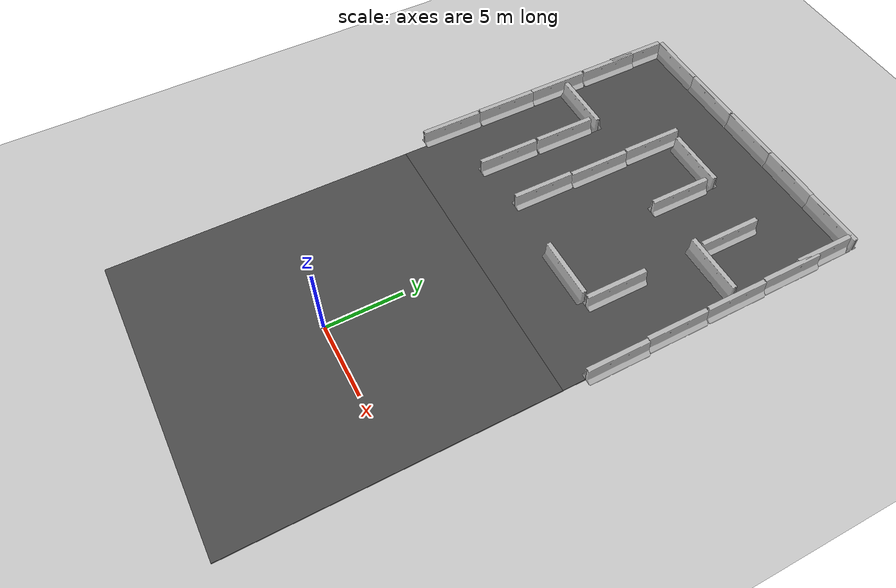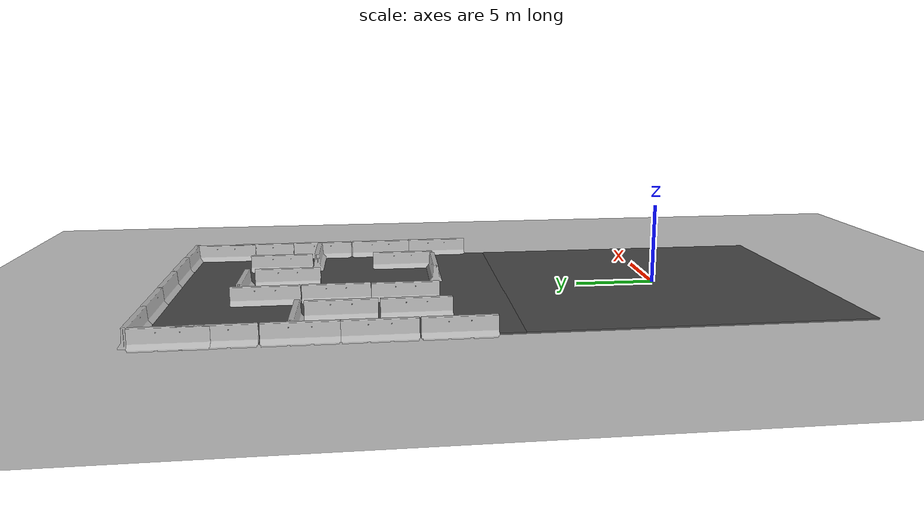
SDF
<sdf version="1.6">
 <world name="default">
  <model name="ground_plane">
   <static>1</static>
   <link name="link">
    <collision name="collision">
     <geometry><plane><normal>0 0 1</normal><size>100 100</size></plane></geometry>
     <surface><friction><ode><mu>100</mu><mu2>50</mu2></ode></friction></surface>
    </collision>
    <visual name="visual">
     <cast_shadows>0</cast_shadows>
     <geometry><plane><normal>0 0 1</normal><size>100 100</size></plane></geometry>
     <material>
      <script><uri>file://media/materials/scripts/gazebo.material</uri><name>Gazebo/Grey</name></script>
     </material>
    </visual>
   </link>
  </model>
  <model name="asphalt_plane">
   <static>1</static>
   <link name="link">
    <collision name="collision"><geometry><box><size>20 20 0.1</size></box></geometry></collision>
    <visual name="visual">
     <cast_shadows>0</cast_shadows>
     <geometry><box><size>20 20 0.1</size></box></geometry>
     <material>
      <script>
       <uri>model://asphalt_plane/materials/scripts</uri>
       <uri>model://asphalt_plane/materials/textures</uri>
       <name>vrc/asphalt</name>
      </script>
     </material>
    </visual>
   </link>
   <pose>0.010541 -0.044599 0 0 -0 0</pose>
  </model>
  <model name="asphalt_plane_0">
   <static>1</static>
   <link name="link">
    <collision name="collision"><geometry><box><size>20 20 0.1</size></box></geometry></collision>
    <visual name="visual">
     <cast_shadows>0</cast_shadows>
     <geometry><box><size>20 20 0.1</size></box></geometry>
     <material>
      <script>
       <uri>model://asphalt_plane/materials/scripts</uri>
       <uri>model://asphalt_plane/materials/textures</uri>
       <name>vrc/asphalt</name>
      </script>
     </material>
    </visual>
   </link>
   <pose>-0.000537 19.9198 0 0 -0 0</pose>
  </model>
  <model name="jersey_barrier_0_clone_3">
   <static>1</static>
   <link name="link">
    <visual name="visual">
     <geometry><mesh><uri>model://jersey_barrier/meshes/jersey_barrier.dae</uri></mesh></geometry>
    </visual>
    <collision name="upright">
     <pose>0 0 0.5715 0 -0 0</pose>
     <geometry><box><size>4.06542 0.3063 1.143</size></box></geometry>
    </collision>
    <collision name="base">
     <pose>0 0 0.032258 0 -0 0</pose>
     <geometry><box><size>4.06542 0.8107 0.064516</size></box></geometry>
    </collision>
    <collision name="base2">
     <pose>0 0 0.1 0 -0 0</pose>
     <geometry><box><size>4.06542 0.65 0.1</size></box></geometry>
    </collision>
    <collision name="base3">
     <pose>0 0 0.2 0 -0 0</pose>
     <geometry><box><size>4.06542 0.5 0.1</size></box></geometry>
    </collision>
    <collision name="left-angle">
     <pose>0 -0.224 0.2401 0.9 -0 0</pose>
     <geometry><box><size>4.06542 0.5 0.064516</size></box></geometry>
    </collision>
    <collision name="right-angle">
     <pose>0 0.224 0.2401 -0.9 0 0</pose>
     <geometry><box><size>4.06542 0.5 0.064516</size></box></geometry>
    </collision>
   </link>
   <pose>-10.2097 13.4787 0 0 -0 1.57</pose>
  </model>
  <model name="jersey_barrier_0_clone_4">
   <static>1</static>
   <link name="link">
    <visual name="visual">
     <geometry><mesh><uri>model://jersey_barrier/meshes/jersey_barrier.dae</uri></mesh></geometry>
    </visual>
    <collision name="upright">
     <pose>0 0 0.5715 0 -0 0</pose>
     <geometry><box><size>4.06542 0.3063 1.143</size></box></geometry>
    </collision>
    <collision name="base">
     <pose>0 0 0.032258 0 -0 0</pose>
     <geometry><box><size>4.06542 0.8107 0.064516</size></box></geometry>
    </collision>
    <collision name="base2">
     <pose>0 0 0.1 0 -0 0</pose>
     <geometry><box><size>4.06542 0.65 0.1</size></box></geometry>
    </collision>
    <collision name="base3">
     <pose>0 0 0.2 0 -0 0</pose>
     <geometry><box><size>4.06542 0.5 0.1</size></box></geometry>
    </collision>
    <collision name="left-angle">
     <pose>0 -0.224 0.2401 0.9 -0 0</pose>
     <geometry><box><size>4.06542 0.5 0.064516</size></box></geometry>
    </collision>
    <collision name="right-angle">
     <pose>0 0.224 0.2401 -0.9 0 0</pose>
     <geometry><box><size>4.06542 0.5 0.064516</size></box></geometry>
    </collision>
   </link>
   <pose>-10.2285 17.6199 0 0 -0 1.57</pose>
  </model>
  <model name="jersey_barrier_0_clone_5">
   <static>1</static>
   <link name="link">
    <visual name="visual">
     <geometry><mesh><uri>model://jersey_barrier/meshes/jersey_barrier.dae</uri></mesh></geometry>
    </visual>
    <collision name="upright">
     <pose>0 0 0.5715 0 -0 0</pose>
     <geometry><box><size>4.06542 0.3063 1.143</size></box></geometry>
    </collision>
    <collision name="base">
     <pose>0 0 0.032258 0 -0 0</pose>
     <geometry><box><size>4.06542 0.8107 0.064516</size></box></geometry>
    </collision>
    <collision name="base2">
     <pose>0 0 0.1 0 -0 0</pose>
     <geometry><box><size>4.06542 0.65 0.1</size></box></geometry>
    </collision>
    <collision name="base3">
     <pose>0 0 0.2 0 -0 0</pose>
     <geometry><box><size>4.06542 0.5 0.1</size></box></geometry>
    </collision>
    <collision name="left-angle">
     <pose>0 -0.224 0.2401 0.9 -0 0</pose>
     <geometry><box><size>4.06542 0.5 0.064516</size></box></geometry>
    </collision>
    <collision name="right-angle">
     <pose>0 0.224 0.2401 -0.9 0 0</pose>
     <geometry><box><size>4.06542 0.5 0.064516</size></box></geometry>
    </collision>
   </link>
   <pose>-10.2364 21.6611 0 0 -0 1.57</pose>
  </model>
  <model name="jersey_barrier_0_clone_6">
   <static>1</static>
   <link name="link">
    <visual name="visual">
     <geometry><mesh><uri>model://jersey_barrier/meshes/jersey_barrier.dae</uri></mesh></geometry>
    </visual>
    <collision name="upright">
     <pose>0 0 0.5715 0 -0 0</pose>
     <geometry><box><size>4.06542 0.3063 1.143</size></box></geometry>
    </collision>
    <collision name="base">
     <pose>0 0 0.032258 0 -0 0</pose>
     <geometry><box><size>4.06542 0.8107 0.064516</size></box></geometry>
    </collision>
    <collision name="base2">
     <pose>0 0 0.1 0 -0 0</pose>
     <geometry><box><size>4.06542 0.65 0.1</size></box></geometry>
    </collision>
    <collision name="base3">
     <pose>0 0 0.2 0 -0 0</pose>
     <geometry><box><size>4.06542 0.5 0.1</size></box></geometry>
    </collision>
    <collision name="left-angle">
     <pose>0 -0.224 0.2401 0.9 -0 0</pose>
     <geometry><box><size>4.06542 0.5 0.064516</size></box></geometry>
    </collision>
    <collision name="right-angle">
     <pose>0 0.224 0.2401 -0.9 0 0</pose>
     <geometry><box><size>4.06542 0.5 0.064516</size></box></geometry>
    </collision>
   </link>
   <pose>-10.2327 25.7998 0 0 -0 1.57</pose>
  </model>
  <model name="jersey_barrier_0_clone_7">
   <static>1</static>
   <link name="link">
    <visual name="visual">
     <geometry><mesh><uri>model://jersey_barrier/meshes/jersey_barrier.dae</uri></mesh></geometry>
    </visual>
    <collision name="upright">
     <pose>0 0 0.5715 0 -0 0</pose>
     <geometry><box><size>4.06542 0.3063 1.143</size></box></geometry>
    </collision>
    <collision name="base">
     <pose>0 0 0.032258 0 -0 0</pose>
     <geometry><box><size>4.06542 0.8107 0.064516</size></box></geometry>
    </collision>
    <collision name="base2">
     <pose>0 0 0.1 0 -0 0</pose>
     <geometry><box><size>4.06542 0.65 0.1</size></box></geometry>
    </collision>
    <collision name="base3">
     <pose>0 0 0.2 0 -0 0</pose>
     <geometry><box><size>4.06542 0.5 0.1</size></box></geometry>
    </collision>
    <collision name="left-angle">
     <pose>0 -0.224 0.2401 0.9 -0 0</pose>
     <geometry><box><size>4.06542 0.5 0.064516</size></box></geometry>
    </collision>
    <collision name="right-angle">
     <pose>0 0.224 0.2401 -0.9 0 0</pose>
     <geometry><box><size>4.06542 0.5 0.064516</size></box></geometry>
    </collision>
   </link>
   <pose>-10.2894 28.1368 0 0 -0 1.57</pose>
  </model>
  <model name="jersey_barrier_0_clone_13">
   <static>1</static>
   <link name="link">
    <visual name="visual">
     <geometry><mesh><uri>model://jersey_barrier/meshes/jersey_barrier.dae</uri></mesh></geometry>
    </visual>
    <collision name="upright">
     <pose>0 0 0.5715 0 -0 0</pose>
     <geometry><box><size>4.06542 0.3063 1.143</size></box></geometry>
    </collision>
    <collision name="base">
     <pose>0 0 0.032258 0 -0 0</pose>
     <geometry><box><size>4.06542 0.8107 0.064516</size></box></geometry>
    </collision>
    <collision name="base2">
     <pose>0 0 0.1 0 -0 0</pose>
     <geometry><box><size>4.06542 0.65 0.1</size></box></geometry>
    </collision>
    <collision name="base3">
     <pose>0 0 0.2 0 -0 0</pose>
     <geometry><box><size>4.06542 0.5 0.1</size></box></geometry>
    </collision>
    <collision name="left-angle">
     <pose>0 -0.224 0.2401 0.9 -0 0</pose>
     <geometry><box><size>4.06542 0.5 0.064516</size></box></geometry>
    </collision>
    <collision name="right-angle">
     <pose>0 0.224 0.2401 -0.9 0 0</pose>
     <geometry><box><size>4.06542 0.5 0.064516</size></box></geometry>
    </collision>
   </link>
   <pose>10.0379 13.3795 0 0 -0 1.57</pose>
  </model>
  <model name="jersey_barrier_0_clone_14">
   <static>1</static>
   <link name="link">
    <visual name="visual">
     <geometry><mesh><uri>model://jersey_barrier/meshes/jersey_barrier.dae</uri></mesh></geometry>
    </visual>
    <collision name="upright">
     <pose>0 0 0.5715 0 -0 0</pose>
     <geometry><box><size>4.06542 0.3063 1.143</size></box></geometry>
    </collision>
    <collision name="base">
     <pose>0 0 0.032258 0 -0 0</pose>
     <geometry><box><size>4.06542 0.8107 0.064516</size></box></geometry>
    </collision>
    <collision name="base2">
     <pose>0 0 0.1 0 -0 0</pose>
     <geometry><box><size>4.06542 0.65 0.1</size></box></geometry>
    </collision>
    <collision name="base3">
     <pose>0 0 0.2 0 -0 0</pose>
     <geometry><box><size>4.06542 0.5 0.1</size></box></geometry>
    </collision>
    <collision name="left-angle">
     <pose>0 -0.224 0.2401 0.9 -0 0</pose>
     <geometry><box><size>4.06542 0.5 0.064516</size></box></geometry>
    </collision>
    <collision name="right-angle">
     <pose>0 0.224 0.2401 -0.9 0 0</pose>
     <geometry><box><size>4.06542 0.5 0.064516</size></box></geometry>
    </collision>
   </link>
   <pose>9.92788 17.433 0 0 -0 1.57</pose>
  </model>
  <model name="jersey_barrier_0_clone_15">
   <static>1</static>
   <link name="link">
    <visual name="visual">
     <geometry><mesh><uri>model://jersey_barrier/meshes/jersey_barrier.dae</uri></mesh></geometry>
    </visual>
    <collision name="upright">
     <pose>0 0 0.5715 0 -0 0</pose>
     <geometry><box><size>4.06542 0.3063 1.143</size></box></geometry>
    </collision>
    <collision name="base">
     <pose>0 0 0.032258 0 -0 0</pose>
     <geometry><box><size>4.06542 0.8107 0.064516</size></box></geometry>
    </collision>
    <collision name="base2">
     <pose>0 0 0.1 0 -0 0</pose>
     <geometry><box><size>4.06542 0.65 0.1</size></box></geometry>
    </collision>
    <collision name="base3">
     <pose>0 0 0.2 0 -0 0</pose>
     <geometry><box><size>4.06542 0.5 0.1</size></box></geometry>
    </collision>
    <collision name="left-angle">
     <pose>0 -0.224 0.2401 0.9 -0 0</pose>
     <geometry><box><size>4.06542 0.5 0.064516</size></box></geometry>
    </collision>
    <collision name="right-angle">
     <pose>0 0.224 0.2401 -0.9 0 0</pose>
     <geometry><box><size>4.06542 0.5 0.064516</size></box></geometry>
    </collision>
   </link>
   <pose>9.90367 21.578 0 0 -0 1.57</pose>
  </model>
  <model name="jersey_barrier_0_clone_16">
   <static>1</static>
   <link name="link">
    <visual name="visual">
     <geometry><mesh><uri>model://jersey_barrier/meshes/jersey_barrier.dae</uri></mesh></geometry>
    </visual>
    <collision name="upright">
     <pose>0 0 0.5715 0 -0 0</pose>
     <geometry><box><size>4.06542 0.3063 1.143</size></box></geometry>
    </collision>
    <collision name="base">
     <pose>0 0 0.032258 0 -0 0</pose>
     <geometry><box><size>4.06542 0.8107 0.064516</size></box></geometry>
    </collision>
    <collision name="base2">
     <pose>0 0 0.1 0 -0 0</pose>
     <geometry><box><size>4.06542 0.65 0.1</size></box></geometry>
    </collision>
    <collision name="base3">
     <pose>0 0 0.2 0 -0 0</pose>
     <geometry><box><size>4.06542 0.5 0.1</size></box></geometry>
    </collision>
    <collision name="left-angle">
     <pose>0 -0.224 0.2401 0.9 -0 0</pose>
     <geometry><box><size>4.06542 0.5 0.064516</size></box></geometry>
    </collision>
    <collision name="right-angle">
     <pose>0 0.224 0.2401 -0.9 0 0</pose>
     <geometry><box><size>4.06542 0.5 0.064516</size></box></geometry>
    </collision>
   </link>
   <pose>9.83696 25.6628 0 0 -0 1.57</pose>
  </model>
  <model name="jersey_barrier_0_clone_17">
   <static>1</static>
   <link name="link">
    <visual name="visual">
     <geometry><mesh><uri>model://jersey_barrier/meshes/jersey_barrier.dae</uri></mesh></geometry>
    </visual>
    <collision name="upright">
     <pose>0 0 0.5715 0 -0 0</pose>
     <geometry><box><size>4.06542 0.3063 1.143</size></box></geometry>
    </collision>
    <collision name="base">
     <pose>0 0 0.032258 0 -0 0</pose>
     <geometry><box><size>4.06542 0.8107 0.064516</size></box></geometry>
    </collision>
    <collision name="base2">
     <pose>0 0 0.1 0 -0 0</pose>
     <geometry><box><size>4.06542 0.65 0.1</size></box></geometry>
    </collision>
    <collision name="base3">
     <pose>0 0 0.2 0 -0 0</pose>
     <geometry><box><size>4.06542 0.5 0.1</size></box></geometry>
    </collision>
    <collision name="left-angle">
     <pose>0 -0.224 0.2401 0.9 -0 0</pose>
     <geometry><box><size>4.06542 0.5 0.064516</size></box></geometry>
    </collision>
    <collision name="right-angle">
     <pose>0 0.224 0.2401 -0.9 0 0</pose>
     <geometry><box><size>4.06542 0.5 0.064516</size></box></geometry>
    </collision>
   </link>
   <pose>9.68937 28.3062 0 0 -0 1.57</pose>
  </model>
  <model name="jersey_barrier_1">
   <static>1</static>
   <link name="link">
    <visual name="visual">
     <geometry><mesh><uri>model://jersey_barrier/meshes/jersey_barrier.dae</uri></mesh></geometry>
    </visual>
    <collision name="upright">
     <pose>0 0 0.5715 0 -0 0</pose>
     <geometry><box><size>4.06542 0.3063 1.143</size></box></geometry>
    </collision>
    <collision name="base">
     <pose>0 0 0.032258 0 -0 0</pose>
     <geometry><box><size>4.06542 0.8107 0.064516</size></box></geometry>
    </collision>
    <collision name="base2">
     <pose>0 0 0.1 0 -0 0</pose>
     <geometry><box><size>4.06542 0.65 0.1</size></box></geometry>
    </collision>
    <collision name="base3">
     <pose>0 0 0.2 0 -0 0</pose>
     <geometry><box><size>4.06542 0.5 0.1</size></box></geometry>
    </collision>
    <collision name="left-angle">
     <pose>0 -0.224 0.2401 0.9 -0 0</pose>
     <geometry><box><size>4.06542 0.5 0.064516</size></box></geometry>
    </collision>
    <collision name="right-angle">
     <pose>0 0.224 0.2401 -0.9 0 0</pose>
     <geometry><box><size>4.06542 0.5 0.064516</size></box></geometry>
    </collision>
   </link>
   <pose>-8.16833 30.2907 0 0 -0 0</pose>
  </model>
  <model name="jersey_barrier_1_clone">
   <static>1</static>
   <link name="link">
    <visual name="visual">
     <geometry><mesh><uri>model://jersey_barrier/meshes/jersey_barrier.dae</uri></mesh></geometry>
    </visual>
    <collision name="upright">
     <pose>0 0 0.5715 0 -0 0</pose>
     <geometry><box><size>4.06542 0.3063 1.143</size></box></geometry>
    </collision>
    <collision name="base">
     <pose>0 0 0.032258 0 -0 0</pose>
     <geometry><box><size>4.06542 0.8107 0.064516</size></box></geometry>
    </collision>
    <collision name="base2">
     <pose>0 0 0.1 0 -0 0</pose>
     <geometry><box><size>4.06542 0.65 0.1</size></box></geometry>
    </collision>
    <collision name="base3">
     <pose>0 0 0.2 0 -0 0</pose>
     <geometry><box><size>4.06542 0.5 0.1</size></box></geometry>
    </collision>
    <collision name="left-angle">
     <pose>0 -0.224 0.2401 0.9 -0 0</pose>
     <geometry><box><size>4.06542 0.5 0.064516</size></box></geometry>
    </collision>
    <collision name="right-angle">
     <pose>0 0.224 0.2401 -0.9 0 0</pose>
     <geometry><box><size>4.06542 0.5 0.064516</size></box></geometry>
    </collision>
   </link>
   <pose>-4.11228 30.3005 0 0 -0 0</pose>
  </model>
  <model name="jersey_barrier_1_clone_0">
   <static>1</static>
   <link name="link">
    <visual name="visual">
     <geometry><mesh><uri>model://jersey_barrier/meshes/jersey_barrier.dae</uri></mesh></geometry>
    </visual>
    <collision name="upright">
     <pose>0 0 0.5715 0 -0 0</pose>
     <geometry><box><size>4.06542 0.3063 1.143</size></box></geometry>
    </collision>
    <collision name="base">
     <pose>0 0 0.032258 0 -0 0</pose>
     <geometry><box><size>4.06542 0.8107 0.064516</size></box></geometry>
    </collision>
    <collision name="base2">
     <pose>0 0 0.1 0 -0 0</pose>
     <geometry><box><size>4.06542 0.65 0.1</size></box></geometry>
    </collision>
    <collision name="base3">
     <pose>0 0 0.2 0 -0 0</pose>
     <geometry><box><size>4.06542 0.5 0.1</size></box></geometry>
    </collision>
    <collision name="left-angle">
     <pose>0 -0.224 0.2401 0.9 -0 0</pose>
     <geometry><box><size>4.06542 0.5 0.064516</size></box></geometry>
    </collision>
    <collision name="right-angle">
     <pose>0 0.224 0.2401 -0.9 0 0</pose>
     <geometry><box><size>4.06542 0.5 0.064516</size></box></geometry>
    </collision>
   </link>
   <pose>-5.5e-05 30.3194 0 0 -0 0</pose>
  </model>
  <model name="jersey_barrier_1_clone_1">
   <static>1</static>
   <link name="link">
    <visual name="visual">
     <geometry><mesh><uri>model://jersey_barrier/meshes/jersey_barrier.dae</uri></mesh></geometry>
    </visual>
    <collision name="upright">
     <pose>0 0 0.5715 0 -0 0</pose>
     <geometry><box><size>4.06542 0.3063 1.143</size></box></geometry>
    </collision>
    <collision name="base">
     <pose>0 0 0.032258 0 -0 0</pose>
     <geometry><box><size>4.06542 0.8107 0.064516</size></box></geometry>
    </collision>
    <collision name="base2">
     <pose>0 0 0.1 0 -0 0</pose>
     <geometry><box><size>4.06542 0.65 0.1</size></box></geometry>
    </collision>
    <collision name="base3">
     <pose>0 0 0.2 0 -0 0</pose>
     <geometry><box><size>4.06542 0.5 0.1</size></box></geometry>
    </collision>
    <collision name="left-angle">
     <pose>0 -0.224 0.2401 0.9 -0 0</pose>
     <geometry><box><size>4.06542 0.5 0.064516</size></box></geometry>
    </collision>
    <collision name="right-angle">
     <pose>0 0.224 0.2401 -0.9 0 0</pose>
     <geometry><box><size>4.06542 0.5 0.064516</size></box></geometry>
    </collision>
   </link>
   <pose>4.06912 30.3372 0 0 -0 0</pose>
  </model>
  <model name="jersey_barrier_1_clone_2">
   <static>1</static>
   <link name="link">
    <visual name="visual">
     <geometry><mesh><uri>model://jersey_barrier/meshes/jersey_barrier.dae</uri></mesh></geometry>
    </visual>
    <collision name="upright">
     <pose>0 0 0.5715 0 -0 0</pose>
     <geometry><box><size>4.06542 0.3063 1.143</size></box></geometry>
    </collision>
    <collision name="base">
     <pose>0 0 0.032258 0 -0 0</pose>
     <geometry><box><size>4.06542 0.8107 0.064516</size></box></geometry>
    </collision>
    <collision name="base2">
     <pose>0 0 0.1 0 -0 0</pose>
     <geometry><box><size>4.06542 0.65 0.1</size></box></geometry>
    </collision>
    <collision name="base3">
     <pose>0 0 0.2 0 -0 0</pose>
     <geometry><box><size>4.06542 0.5 0.1</size></box></geometry>
    </collision>
    <collision name="left-angle">
     <pose>0 -0.224 0.2401 0.9 -0 0</pose>
     <geometry><box><size>4.06542 0.5 0.064516</size></box></geometry>
    </collision>
    <collision name="right-angle">
     <pose>0 0.224 0.2401 -0.9 0 0</pose>
     <geometry><box><size>4.06542 0.5 0.064516</size></box></geometry>
    </collision>
   </link>
   <pose>8.07985 30.301 0 0 -0 0</pose>
  </model>
  <model name="jersey_barrier_0_clone_11_clone_2">
   <static>1</static>
   <link name="link">
    <visual name="visual">
     <geometry><mesh><uri>model://jersey_barrier/meshes/jersey_barrier.dae</uri></mesh></geometry>
    </visual>
    <collision name="upright">
     <pose>0 0 0.5715 0 -0 0</pose>
     <geometry><box><size>4.06542 0.3063 1.143</size></box></geometry>
    </collision>
    <collision name="base">
     <pose>0 0 0.032258 0 -0 0</pose>
     <geometry><box><size>4.06542 0.8107 0.064516</size></box></geometry>
    </collision>
    <collision name="base2">
     <pose>0 0 0.1 0 -0 0</pose>
     <geometry><box><size>4.06542 0.65 0.1</size></box></geometry>
    </collision>
    <collision name="base3">
     <pose>0 0 0.2 0 -0 0</pose>
     <geometry><box><size>4.06542 0.5 0.1</size></box></geometry>
    </collision>
    <collision name="left-angle">
     <pose>0 -0.224 0.2401 0.9 -0 0</pose>
     <geometry><box><size>4.06542 0.5 0.064516</size></box></geometry>
    </collision>
    <collision name="right-angle">
     <pose>0 0.224 0.2401 -0.9 0 0</pose>
     <geometry><box><size>4.06542 0.5 0.064516</size></box></geometry>
    </collision>
   </link>
   <pose>5.95806 15.9531 0 0 -0 1.57</pose>
  </model>
  <model name="jersey_barrier_0_clone_11_clone_4">
   <static>1</static>
   <link name="link">
    <visual name="visual">
     <geometry><mesh><uri>model://jersey_barrier/meshes/jersey_barrier.dae</uri></mesh></geometry>
    </visual>
    <collision name="upright">
     <pose>0 0 0.5715 0 -0 0</pose>
     <geometry><box><size>4.06542 0.3063 1.143</size></box></geometry>
    </collision>
    <collision name="base">
     <pose>0 0 0.032258 0 -0 0</pose>
     <geometry><box><size>4.06542 0.8107 0.064516</size></box></geometry>
    </collision>
    <collision name="base2">
     <pose>0 0 0.1 0 -0 0</pose>
     <geometry><box><size>4.06542 0.65 0.1</size></box></geometry>
    </collision>
    <collision name="base3">
     <pose>0 0 0.2 0 -0 0</pose>
     <geometry><box><size>4.06542 0.5 0.1</size></box></geometry>
    </collision>
    <collision name="left-angle">
     <pose>0 -0.224 0.2401 0.9 -0 0</pose>
     <geometry><box><size>4.06542 0.5 0.064516</size></box></geometry>
    </collision>
    <collision name="right-angle">
     <pose>0 0.224 0.2401 -0.9 0 0</pose>
     <geometry><box><size>4.06542 0.5 0.064516</size></box></geometry>
    </collision>
   </link>
   <pose>5.96255 24.07 0 0 -0 1.57</pose>
  </model>
  <model name="jersey_barrier_1_clone_3_clone">
   <static>1</static>
   <link name="link">
    <visual name="visual">
     <geometry><mesh><uri>model://jersey_barrier/meshes/jersey_barrier.dae</uri></mesh></geometry>
    </visual>
    <collision name="upright">
     <pose>0 0 0.5715 0 -0 0</pose>
     <geometry><box><size>4.06542 0.3063 1.143</size></box></geometry>
    </collision>
    <collision name="base">
     <pose>0 0 0.032258 0 -0 0</pose>
     <geometry><box><size>4.06542 0.8107 0.064516</size></box></geometry>
    </collision>
    <collision name="base2">
     <pose>0 0 0.1 0 -0 0</pose>
     <geometry><box><size>4.06542 0.65 0.1</size></box></geometry>
    </collision>
    <collision name="base3">
     <pose>0 0 0.2 0 -0 0</pose>
     <geometry><box><size>4.06542 0.5 0.1</size></box></geometry>
    </collision>
    <collision name="left-angle">
     <pose>0 -0.224 0.2401 0.9 -0 0</pose>
     <geometry><box><size>4.06542 0.5 0.064516</size></box></geometry>
    </collision>
    <collision name="right-angle">
     <pose>0 0.224 0.2401 -0.9 0 0</pose>
     <geometry><box><size>4.06542 0.5 0.064516</size></box></geometry>
    </collision>
   </link>
   <pose>0.078207 25.8525 0 0 -0 0</pose>
  </model>
  <model name="jersey_barrier_0_clone_11_clone_clone_2">
   <static>1</static>
   <link name="link">
    <visual name="visual">
     <geometry><mesh><uri>model://jersey_barrier/meshes/jersey_barrier.dae</uri></mesh></geometry>
    </visual>
    <collision name="upright">
     <pose>0 0 0.5715 0 -0 0</pose>
     <geometry><box><size>4.06542 0.3063 1.143</size></box></geometry>
    </collision>
    <collision name="base">
     <pose>0 0 0.032258 0 -0 0</pose>
     <geometry><box><size>4.06542 0.8107 0.064516</size></box></geometry>
    </collision>
    <collision name="base2">
     <pose>0 0 0.1 0 -0 0</pose>
     <geometry><box><size>4.06542 0.65 0.1</size></box></geometry>
    </collision>
    <collision name="base3">
     <pose>0 0 0.2 0 -0 0</pose>
     <geometry><box><size>4.06542 0.5 0.1</size></box></geometry>
    </collision>
    <collision name="left-angle">
     <pose>0 -0.224 0.2401 0.9 -0 0</pose>
     <geometry><box><size>4.06542 0.5 0.064516</size></box></geometry>
    </collision>
    <collision name="right-angle">
     <pose>0 0.224 0.2401 -0.9 0 0</pose>
     <geometry><box><size>4.06542 0.5 0.064516</size></box></geometry>
    </collision>
   </link>
   <pose>-6.16721 15.5521 0 0 -0 1.57</pose>
  </model>
  <model name="jersey_barrier_0_clone_11_clone_clone_3">
   <static>1</static>
   <link name="link">
    <visual name="visual">
     <geometry><mesh><uri>model://jersey_barrier/meshes/jersey_barrier.dae</uri></mesh></geometry>
    </visual>
    <collision name="upright">
     <pose>0 0 0.5715 0 -0 0</pose>
     <geometry><box><size>4.06542 0.3063 1.143</size></box></geometry>
    </collision>
    <collision name="base">
     <pose>0 0 0.032258 0 -0 0</pose>
     <geometry><box><size>4.06542 0.8107 0.064516</size></box></geometry>
    </collision>
    <collision name="base2">
     <pose>0 0 0.1 0 -0 0</pose>
     <geometry><box><size>4.06542 0.65 0.1</size></box></geometry>
    </collision>
    <collision name="base3">
     <pose>0 0 0.2 0 -0 0</pose>
     <geometry><box><size>4.06542 0.5 0.1</size></box></geometry>
    </collision>
    <collision name="left-angle">
     <pose>0 -0.224 0.2401 0.9 -0 0</pose>
     <geometry><box><size>4.06542 0.5 0.064516</size></box></geometry>
    </collision>
    <collision name="right-angle">
     <pose>0 0.224 0.2401 -0.9 0 0</pose>
     <geometry><box><size>4.06542 0.5 0.064516</size></box></geometry>
    </collision>
   </link>
   <pose>-6.16132 19.7328 0 0 -0 1.57</pose>
  </model>
  <model name="jersey_barrier_1_clone_3_clone_2">
   <static>1</static>
   <link name="link">
    <visual name="visual">
     <geometry><mesh><uri>model://jersey_barrier/meshes/jersey_barrier.dae</uri></mesh></geometry>
    </visual>
    <collision name="upright">
     <pose>0 0 0.5715 0 -0 0</pose>
     <geometry><box><size>4.06542 0.3063 1.143</size></box></geometry>
    </collision>
    <collision name="base">
     <pose>0 0 0.032258 0 -0 0</pose>
     <geometry><box><size>4.06542 0.8107 0.064516</size></box></geometry>
    </collision>
    <collision name="base2">
     <pose>0 0 0.1 0 -0 0</pose>
     <geometry><box><size>4.06542 0.65 0.1</size></box></geometry>
    </collision>
    <collision name="base3">
     <pose>0 0 0.2 0 -0 0</pose>
     <geometry><box><size>4.06542 0.5 0.1</size></box></geometry>
    </collision>
    <collision name="left-angle">
     <pose>0 -0.224 0.2401 0.9 -0 0</pose>
     <geometry><box><size>4.06542 0.5 0.064516</size></box></geometry>
    </collision>
    <collision name="right-angle">
     <pose>0 0.224 0.2401 -0.9 0 0</pose>
     <geometry><box><size>4.06542 0.5 0.064516</size></box></geometry>
    </collision>
   </link>
   <pose>3.58615 13.9632 0 0 -0 0</pose>
  </model>
  <model name="jersey_barrier_0_clone_11_clone_clone_0_clone">
   <static>1</static>
   <link name="link">
    <visual name="visual">
     <geometry><mesh><uri>model://jersey_barrier/meshes/jersey_barrier.dae</uri></mesh></geometry>
    </visual>
    <collision name="upright">
     <pose>0 0 0.5715 0 -0 0</pose>
     <geometry><box><size>4.06542 0.3063 1.143</size></box></geometry>
    </collision>
    <collision name="base">
     <pose>0 0 0.032258 0 -0 0</pose>
     <geometry><box><size>4.06542 0.8107 0.064516</size></box></geometry>
    </collision>
    <collision name="base2">
     <pose>0 0 0.1 0 -0 0</pose>
     <geometry><box><size>4.06542 0.65 0.1</size></box></geometry>
    </collision>
    <collision name="base3">
     <pose>0 0 0.2 0 -0 0</pose>
     <geometry><box><size>4.06542 0.5 0.1</size></box></geometry>
    </collision>
    <collision name="left-angle">
     <pose>0 -0.224 0.2401 0.9 -0 0</pose>
     <geometry><box><size>4.06542 0.5 0.064516</size></box></geometry>
    </collision>
    <collision name="right-angle">
     <pose>0 0.224 0.2401 -0.9 0 0</pose>
     <geometry><box><size>4.06542 0.5 0.064516</size></box></geometry>
    </collision>
   </link>
   <pose>-2.51712 20.1352 0 0 -0 1.57</pose>
  </model>
  <model name="jersey_barrier_0_clone_11_clone_clone_0_clone_0">
   <static>1</static>
   <link name="link">
    <visual name="visual">
     <geometry><mesh><uri>model://jersey_barrier/meshes/jersey_barrier.dae</uri></mesh></geometry>
    </visual>
    <collision name="upright">
     <pose>0 0 0.5715 0 -0 0</pose>
     <geometry><box><size>4.06542 0.3063 1.143</size></box></geometry>
    </collision>
    <collision name="base">
     <pose>0 0 0.032258 0 -0 0</pose>
     <geometry><box><size>4.06542 0.8107 0.064516</size></box></geometry>
    </collision>
    <collision name="base2">
     <pose>0 0 0.1 0 -0 0</pose>
     <geometry><box><size>4.06542 0.65 0.1</size></box></geometry>
    </collision>
    <collision name="base3">
     <pose>0 0 0.2 0 -0 0</pose>
     <geometry><box><size>4.06542 0.5 0.1</size></box></geometry>
    </collision>
    <collision name="left-angle">
     <pose>0 -0.224 0.2401 0.9 -0 0</pose>
     <geometry><box><size>4.06542 0.5 0.064516</size></box></geometry>
    </collision>
    <collision name="right-angle">
     <pose>0 0.224 0.2401 -0.9 0 0</pose>
     <geometry><box><size>4.06542 0.5 0.064516</size></box></geometry>
    </collision>
   </link>
   <pose>-2.58085 24.2531 0 0 -0 1.57</pose>
  </model>
  <model name="jersey_barrier_1_clone_3_clone_0_clone_0">
   <static>1</static>
   <link name="link">
    <visual name="visual">
     <geometry><mesh><uri>model://jersey_barrier/meshes/jersey_barrier.dae</uri></mesh></geometry>
    </visual>
    <collision name="upright">
     <pose>0 0 0.5715 0 -0 0</pose>
     <geometry><box><size>4.06542 0.3063 1.143</size></box></geometry>
    </collision>
    <collision name="base">
     <pose>0 0 0.032258 0 -0 0</pose>
     <geometry><box><size>4.06542 0.8107 0.064516</size></box></geometry>
    </collision>
    <collision name="base2">
     <pose>0 0 0.1 0 -0 0</pose>
     <geometry><box><size>4.06542 0.65 0.1</size></box></geometry>
    </collision>
    <collision name="base3">
     <pose>0 0 0.2 0 -0 0</pose>
     <geometry><box><size>4.06542 0.5 0.1</size></box></geometry>
    </collision>
    <collision name="left-angle">
     <pose>0 -0.224 0.2401 0.9 -0 0</pose>
     <geometry><box><size>4.06542 0.5 0.064516</size></box></geometry>
    </collision>
    <collision name="right-angle">
     <pose>0 0.224 0.2401 -0.9 0 0</pose>
     <geometry><box><size>4.06542 0.5 0.064516</size></box></geometry>
    </collision>
   </link>
   <pose>7.47509 21.7312 0.079987 0 -0 0</pose>
  </model>
  <model name="jersey_barrier_0_clone_11_clone_clone_0_clone_clone">
   <static>1</static>
   <link name="link">
    <visual name="visual">
     <geometry><mesh><uri>model://jersey_barrier/meshes/jersey_barrier.dae</uri></mesh></geometry>
    </visual>
    <collision name="upright">
     <pose>0 0 0.5715 0 -0 0</pose>
     <geometry><box><size>4.06542 0.3063 1.143</size></box></geometry>
    </collision>
    <collision name="base">
     <pose>0 0 0.032258 0 -0 0</pose>
     <geometry><box><size>4.06542 0.8107 0.064516</size></box></geometry>
    </collision>
    <collision name="base2">
     <pose>0 0 0.1 0 -0 0</pose>
     <geometry><box><size>4.06542 0.65 0.1</size></box></geometry>
    </collision>
    <collision name="base3">
     <pose>0 0 0.2 0 -0 0</pose>
     <geometry><box><size>4.06542 0.5 0.1</size></box></geometry>
    </collision>
    <collision name="left-angle">
     <pose>0 -0.224 0.2401 0.9 -0 0</pose>
     <geometry><box><size>4.06542 0.5 0.064516</size></box></geometry>
    </collision>
    <collision name="right-angle">
     <pose>0 0.224 0.2401 -0.9 0 0</pose>
     <geometry><box><size>4.06542 0.5 0.064516</size></box></geometry>
    </collision>
   </link>
   <pose>-2.61311 16.0562 0 0 -0 1.57</pose>
  </model>
  <model name="jersey_barrier_0_clone_11_clone_clone_clone_clone_0">
   <static>1</static>
   <link name="link">
    <visual name="visual">
     <geometry><mesh><uri>model://jersey_barrier/meshes/jersey_barrier.dae</uri></mesh></geometry>
    </visual>
    <collision name="upright">
     <pose>0 0 0.5715 0 -0 0</pose>
     <geometry><box><size>4.06542 0.3063 1.143</size></box></geometry>
    </collision>
    <collision name="base">
     <pose>0 0 0.032258 0 -0 0</pose>
     <geometry><box><size>4.06542 0.8107 0.064516</size></box></geometry>
    </collision>
    <collision name="base2">
     <pose>0 0 0.1 0 -0 0</pose>
     <geometry><box><size>4.06542 0.65 0.1</size></box></geometry>
    </collision>
    <collision name="base3">
     <pose>0 0 0.2 0 -0 0</pose>
     <geometry><box><size>4.06542 0.5 0.1</size></box></geometry>
    </collision>
    <collision name="left-angle">
     <pose>0 -0.224 0.2401 0.9 -0 0</pose>
     <geometry><box><size>4.06542 0.5 0.064516</size></box></geometry>
    </collision>
    <collision name="right-angle">
     <pose>0 0.224 0.2401 -0.9 0 0</pose>
     <geometry><box><size>4.06542 0.5 0.064516</size></box></geometry>
    </collision>
   </link>
   <pose>1.8683 23.3348 0 0 -0 1.57</pose>
  </model>
  <model name="jersey_barrier_1_clone_3_clone_1">
   <static>1</static>
   <link name="link">
    <visual name="visual">
     <geometry><mesh><uri>model://jersey_barrier/meshes/jersey_barrier.dae</uri></mesh></geometry>
    </visual>
    <collision name="upright">
     <pose>0 0 0.5715 0 -0 0</pose>
     <geometry><box><size>4.06542 0.3063 1.143</size></box></geometry>
    </collision>
    <collision name="base">
     <pose>0 0 0.032258 0 -0 0</pose>
     <geometry><box><size>4.06542 0.8107 0.064516</size></box></geometry>
    </collision>
    <collision name="base2">
     <pose>0 0 0.1 0 -0 0</pose>
     <geometry><box><size>4.06542 0.65 0.1</size></box></geometry>
    </collision>
    <collision name="base3">
     <pose>0 0 0.2 0 -0 0</pose>
     <geometry><box><size>4.06542 0.5 0.1</size></box></geometry>
    </collision>
    <collision name="left-angle">
     <pose>0 -0.224 0.2401 0.9 -0 0</pose>
     <geometry><box><size>4.06542 0.5 0.064516</size></box></geometry>
    </collision>
    <collision name="right-angle">
     <pose>0 0.224 0.2401 -0.9 0 0</pose>
     <geometry><box><size>4.06542 0.5 0.064516</size></box></geometry>
    </collision>
   </link>
   <pose>-7.80935 22.1586 0 0 -0 0</pose>
  </model>
 </world>
</sdf>
